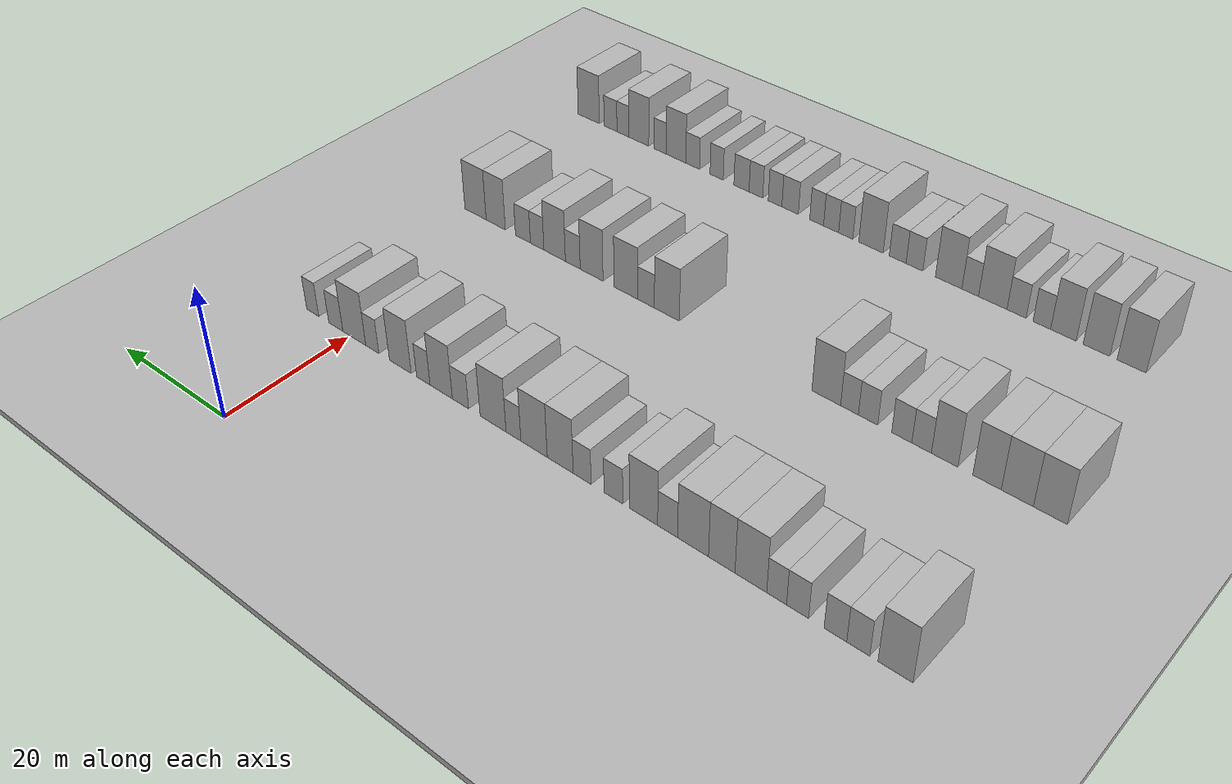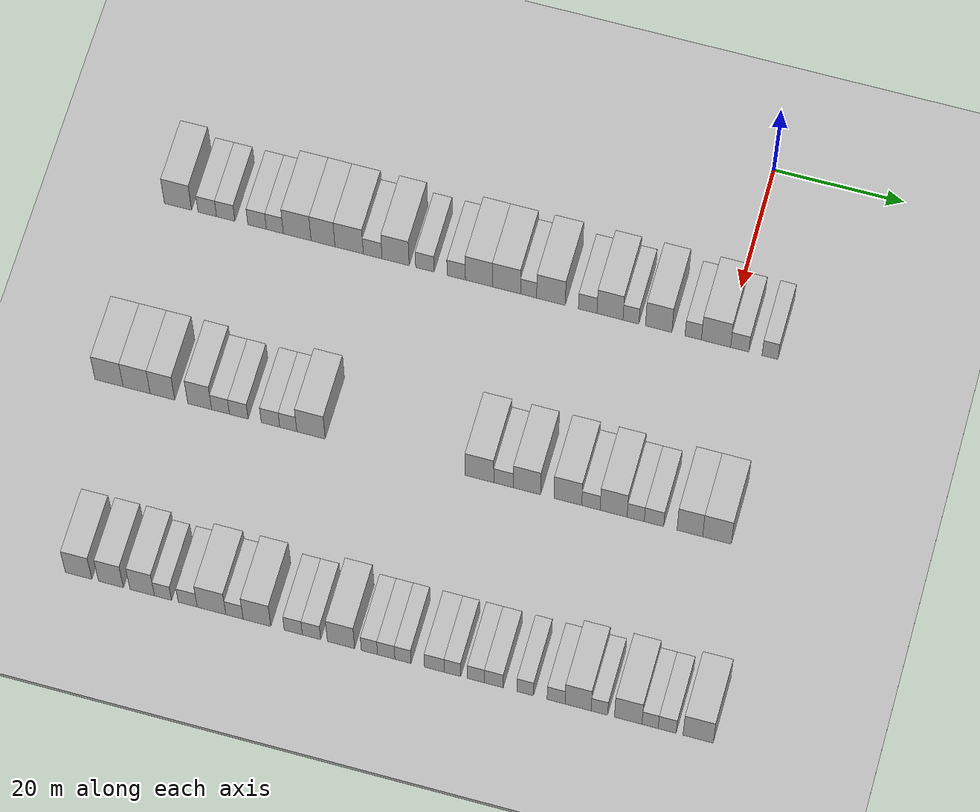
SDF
<sdf version="1.6">
 <world name="default">
  <include><name>ground_plane_1</name><uri>model://HANNAS_ground_plane</uri></include>
  <include>
   <name>ground_plane_2</name>
   <uri>model://HANNAS_ground_plane</uri>
   <pose>100 0 0  0 0 0</pose>
  </include>
  <model name="building_51">
   <static>1</static>
   <pose>25.0000 -84.2561 0 0.000000 0.000000 0.000000</pose>
   <link name="link">
    <pose>0 0 4.50 0 0 0</pose>
    <collision name="collision"><geometry><box><size>10.0000 4.2470 9.0000</size></box></geometry></collision>
    <visual name="visual">
     <cast_shadows>0</cast_shadows>
     <geometry><box><size>10.0000 4.2470 9.0000</size></box></geometry>
     <material>
      <script>
       <uri>model://HANNAS_wall/materials/scripts</uri>
       <uri>model://HANNAS_wall/materials/textures</uri>
       <name>vrc/HANNAS_wall</name>
      </script>
     </material>
    </visual>
   </link>
  </model>
  <model name="building_52">
   <static>1</static>
   <pose>25.0000 -79.6930 0 0.000000 0.000000 0.000000</pose>
   <link name="link">
    <pose>0 0 3.00 0 0 0</pose>
    <collision name="collision"><geometry><box><size>10.0000 2.8791 6.0000</size></box></geometry></collision>
    <visual name="visual">
     <cast_shadows>0</cast_shadows>
     <geometry><box><size>10.0000 2.8791 6.0000</size></box></geometry>
     <material>
      <script>
       <uri>model://HANNAS_wall/materials/scripts</uri>
       <uri>model://HANNAS_wall/materials/textures</uri>
       <name>vrc/HANNAS_wall</name>
      </script>
     </material>
    </visual>
   </link>
  </model>
  <model name="building_53">
   <static>1</static>
   <pose>25.0000 -76.8154 0 0.000000 0.000000 0.000000</pose>
   <link name="link">
    <pose>0 0 3.00 0 0 0</pose>
    <collision name="collision"><geometry><box><size>10.0000 2.8763 6.0000</size></box></geometry></collision>
    <visual name="visual">
     <cast_shadows>0</cast_shadows>
     <geometry><box><size>10.0000 2.8763 6.0000</size></box></geometry>
     <material>
      <script>
       <uri>model://HANNAS_wall/materials/scripts</uri>
       <uri>model://HANNAS_wall/materials/textures</uri>
       <name>vrc/HANNAS_wall</name>
      </script>
     </material>
    </visual>
   </link>
  </model>
  <model name="building_54">
   <static>1</static>
   <pose>25.0000 -71.9333 0 0.000000 0.000000 0.000000</pose>
   <link name="link">
    <pose>0 0 3.00 0 0 0</pose>
    <collision name="collision"><geometry><box><size>10.0000 2.8878 6.0000</size></box></geometry></collision>
    <visual name="visual">
     <cast_shadows>0</cast_shadows>
     <geometry><box><size>10.0000 2.8878 6.0000</size></box></geometry>
     <material>
      <script>
       <uri>model://HANNAS_wall/materials/scripts</uri>
       <uri>model://HANNAS_wall/materials/textures</uri>
       <name>vrc/HANNAS_wall</name>
      </script>
     </material>
    </visual>
   </link>
  </model>
  <model name="building_55">
   <static>1</static>
   <pose>25.0000 -69.1700 0 0.000000 0.000000 0.000000</pose>
   <link name="link">
    <pose>0 0 3.00 0 0 0</pose>
    <collision name="collision"><geometry><box><size>10.0000 2.6389 6.0000</size></box></geometry></collision>
    <visual name="visual">
     <cast_shadows>0</cast_shadows>
     <geometry><box><size>10.0000 2.6389 6.0000</size></box></geometry>
     <material>
      <script>
       <uri>model://HANNAS_wall/materials/scripts</uri>
       <uri>model://HANNAS_wall/materials/textures</uri>
       <name>vrc/HANNAS_wall</name>
      </script>
     </material>
    </visual>
   </link>
  </model>
  <model name="building_56">
   <static>1</static>
   <pose>25.0000 -65.6953 0 0.000000 0.000000 0.000000</pose>
   <link name="link">
    <pose>0 0 4.50 0 0 0</pose>
    <collision name="collision"><geometry><box><size>10.0000 4.3104 9.0000</size></box></geometry></collision>
    <visual name="visual">
     <cast_shadows>0</cast_shadows>
     <geometry><box><size>10.0000 4.3104 9.0000</size></box></geometry>
     <material>
      <script>
       <uri>model://HANNAS_wall/materials/scripts</uri>
       <uri>model://HANNAS_wall/materials/textures</uri>
       <name>vrc/HANNAS_wall</name>
      </script>
     </material>
    </visual>
   </link>
  </model>
  <model name="building_57">
   <static>1</static>
   <pose>25.0000 -61.6923 0 0.000000 0.000000 0.000000</pose>
   <link name="link">
    <pose>0 0 4.50 0 0 0</pose>
    <collision name="collision"><geometry><box><size>10.0000 3.6957 9.0000</size></box></geometry></collision>
    <visual name="visual">
     <cast_shadows>0</cast_shadows>
     <geometry><box><size>10.0000 3.6957 9.0000</size></box></geometry>
     <material>
      <script>
       <uri>model://HANNAS_wall/materials/scripts</uri>
       <uri>model://HANNAS_wall/materials/textures</uri>
       <name>vrc/HANNAS_wall</name>
      </script>
     </material>
    </visual>
   </link>
  </model>
  <model name="building_58">
   <static>1</static>
   <pose>25.0000 -57.6454 0 0.000000 0.000000 0.000000</pose>
   <link name="link">
    <pose>0 0 4.50 0 0 0</pose>
    <collision name="collision"><geometry><box><size>10.0000 4.3980 9.0000</size></box></geometry></collision>
    <visual name="visual">
     <cast_shadows>0</cast_shadows>
     <geometry><box><size>10.0000 4.3980 9.0000</size></box></geometry>
     <material>
      <script>
       <uri>model://HANNAS_wall/materials/scripts</uri>
       <uri>model://HANNAS_wall/materials/textures</uri>
       <name>vrc/HANNAS_wall</name>
      </script>
     </material>
    </visual>
   </link>
  </model>
  <model name="building_59">
   <static>1</static>
   <pose>25.0000 -53.9917 0 0.000000 0.000000 0.000000</pose>
   <link name="link">
    <pose>0 0 3.00 0 0 0</pose>
    <collision name="collision"><geometry><box><size>10.0000 2.9095 6.0000</size></box></geometry></collision>
    <visual name="visual">
     <cast_shadows>0</cast_shadows>
     <geometry><box><size>10.0000 2.9095 6.0000</size></box></geometry>
     <material>
      <script>
       <uri>model://HANNAS_wall/materials/scripts</uri>
       <uri>model://HANNAS_wall/materials/textures</uri>
       <name>vrc/HANNAS_wall</name>
      </script>
     </material>
    </visual>
   </link>
  </model>
  <model name="building_60">
   <static>1</static>
   <pose>25.0000 -50.4395 0 0.000000 0.000000 0.000000</pose>
   <link name="link">
    <pose>0 0 4.50 0 0 0</pose>
    <collision name="collision"><geometry><box><size>10.0000 4.1948 9.0000</size></box></geometry></collision>
    <visual name="visual">
     <cast_shadows>0</cast_shadows>
     <geometry><box><size>10.0000 4.1948 9.0000</size></box></geometry>
     <material>
      <script>
       <uri>model://HANNAS_wall/materials/scripts</uri>
       <uri>model://HANNAS_wall/materials/textures</uri>
       <name>vrc/HANNAS_wall</name>
      </script>
     </material>
    </visual>
   </link>
  </model>
  <model name="building_61">
   <static>1</static>
   <pose>25.0000 -45.9102 0 0.000000 0.000000 0.000000</pose>
   <link name="link">
    <pose>0 0 3.00 0 0 0</pose>
    <collision name="collision"><geometry><box><size>10.0000 2.8638 6.0000</size></box></geometry></collision>
    <visual name="visual">
     <cast_shadows>0</cast_shadows>
     <geometry><box><size>10.0000 2.8638 6.0000</size></box></geometry>
     <material>
      <script>
       <uri>model://HANNAS_wall/materials/scripts</uri>
       <uri>model://HANNAS_wall/materials/textures</uri>
       <name>vrc/HANNAS_wall</name>
      </script>
     </material>
    </visual>
   </link>
  </model>
  <model name="building_62">
   <static>1</static>
   <pose>25.0000 -41.0703 0 0.000000 0.000000 0.000000</pose>
   <link name="link">
    <pose>0 0 3.00 0 0 0</pose>
    <collision name="collision"><geometry><box><size>10.0000 2.8161 6.0000</size></box></geometry></collision>
    <visual name="visual">
     <cast_shadows>0</cast_shadows>
     <geometry><box><size>10.0000 2.8161 6.0000</size></box></geometry>
     <material>
      <script>
       <uri>model://HANNAS_wall/materials/scripts</uri>
       <uri>model://HANNAS_wall/materials/textures</uri>
       <name>vrc/HANNAS_wall</name>
      </script>
     </material>
    </visual>
   </link>
  </model>
  <model name="building_63">
   <static>1</static>
   <pose>25.0000 -37.5849 0 0.000000 0.000000 0.000000</pose>
   <link name="link">
    <pose>0 0 4.50 0 0 0</pose>
    <collision name="collision"><geometry><box><size>10.0000 4.1545 9.0000</size></box></geometry></collision>
    <visual name="visual">
     <cast_shadows>0</cast_shadows>
     <geometry><box><size>10.0000 4.1545 9.0000</size></box></geometry>
     <material>
      <script>
       <uri>model://HANNAS_wall/materials/scripts</uri>
       <uri>model://HANNAS_wall/materials/textures</uri>
       <name>vrc/HANNAS_wall</name>
      </script>
     </material>
    </visual>
   </link>
  </model>
  <model name="building_64">
   <static>1</static>
   <pose>25.0000 -33.3486 0 0.000000 0.000000 0.000000</pose>
   <link name="link">
    <pose>0 0 4.50 0 0 0</pose>
    <collision name="collision"><geometry><box><size>10.0000 4.3183 9.0000</size></box></geometry></collision>
    <visual name="visual">
     <cast_shadows>0</cast_shadows>
     <geometry><box><size>10.0000 4.3183 9.0000</size></box></geometry>
     <material>
      <script>
       <uri>model://HANNAS_wall/materials/scripts</uri>
       <uri>model://HANNAS_wall/materials/textures</uri>
       <name>vrc/HANNAS_wall</name>
      </script>
     </material>
    </visual>
   </link>
  </model>
  <model name="building_65">
   <static>1</static>
   <pose>25.0000 -29.9497 0 0.000000 0.000000 0.000000</pose>
   <link name="link">
    <pose>0 0 3.00 0 0 0</pose>
    <collision name="collision"><geometry><box><size>10.0000 2.4795 6.0000</size></box></geometry></collision>
    <visual name="visual">
     <cast_shadows>0</cast_shadows>
     <geometry><box><size>10.0000 2.4795 6.0000</size></box></geometry>
     <material>
      <script>
       <uri>model://HANNAS_wall/materials/scripts</uri>
       <uri>model://HANNAS_wall/materials/textures</uri>
       <name>vrc/HANNAS_wall</name>
      </script>
     </material>
    </visual>
   </link>
  </model>
  <model name="building_66">
   <static>1</static>
   <pose>25.0000 -26.5078 0 0.000000 0.000000 0.000000</pose>
   <link name="link">
    <pose>0 0 4.50 0 0 0</pose>
    <collision name="collision"><geometry><box><size>10.0000 4.4043 9.0000</size></box></geometry></collision>
    <visual name="visual">
     <cast_shadows>0</cast_shadows>
     <geometry><box><size>10.0000 4.4043 9.0000</size></box></geometry>
     <material>
      <script>
       <uri>model://HANNAS_wall/materials/scripts</uri>
       <uri>model://HANNAS_wall/materials/textures</uri>
       <name>vrc/HANNAS_wall</name>
      </script>
     </material>
    </visual>
   </link>
  </model>
  <model name="building_67">
   <static>1</static>
   <pose>25.0000 -20.8807 0 0.000000 0.000000 0.000000</pose>
   <link name="link">
    <pose>0 0 3.00 0 0 0</pose>
    <collision name="collision"><geometry><box><size>10.0000 2.8499 6.0000</size></box></geometry></collision>
    <visual name="visual">
     <cast_shadows>0</cast_shadows>
     <geometry><box><size>10.0000 2.8499 6.0000</size></box></geometry>
     <material>
      <script>
       <uri>model://HANNAS_wall/materials/scripts</uri>
       <uri>model://HANNAS_wall/materials/textures</uri>
       <name>vrc/HANNAS_wall</name>
      </script>
     </material>
    </visual>
   </link>
  </model>
  <model name="building_68">
   <static>1</static>
   <pose>25.0000 -17.4631 0 0.000000 0.000000 0.000000</pose>
   <link name="link">
    <pose>0 0 4.50 0 0 0</pose>
    <collision name="collision"><geometry><box><size>10.0000 3.9854 9.0000</size></box></geometry></collision>
    <visual name="visual">
     <cast_shadows>0</cast_shadows>
     <geometry><box><size>10.0000 3.9854 9.0000</size></box></geometry>
     <material>
      <script>
       <uri>model://HANNAS_wall/materials/scripts</uri>
       <uri>model://HANNAS_wall/materials/textures</uri>
       <name>vrc/HANNAS_wall</name>
      </script>
     </material>
    </visual>
   </link>
  </model>
  <model name="building_69">
   <static>1</static>
   <pose>25.0000 -14.2533 0 0.000000 0.000000 0.000000</pose>
   <link name="link">
    <pose>0 0 3.00 0 0 0</pose>
    <collision name="collision"><geometry><box><size>10.0000 2.4342 6.0000</size></box></geometry></collision>
    <visual name="visual">
     <cast_shadows>0</cast_shadows>
     <geometry><box><size>10.0000 2.4342 6.0000</size></box></geometry>
     <material>
      <script>
       <uri>model://HANNAS_wall/materials/scripts</uri>
       <uri>model://HANNAS_wall/materials/textures</uri>
       <name>vrc/HANNAS_wall</name>
      </script>
     </material>
    </visual>
   </link>
  </model>
  <model name="building_70">
   <static>1</static>
   <pose>25.0000 -10.0174 0 0.000000 0.000000 0.000000</pose>
   <link name="link">
    <pose>0 0 4.50 0 0 0</pose>
    <collision name="collision"><geometry><box><size>10.0000 4.0376 9.0000</size></box></geometry></collision>
    <visual name="visual">
     <cast_shadows>0</cast_shadows>
     <geometry><box><size>10.0000 4.0376 9.0000</size></box></geometry>
     <material>
      <script>
       <uri>model://HANNAS_wall/materials/scripts</uri>
       <uri>model://HANNAS_wall/materials/textures</uri>
       <name>vrc/HANNAS_wall</name>
      </script>
     </material>
    </visual>
   </link>
  </model>
  <model name="building_71">
   <static>1</static>
   <pose>25.0000 -4.7479 0 0.000000 0.000000 0.000000</pose>
   <link name="link">
    <pose>0 0 3.00 0 0 0</pose>
    <collision name="collision"><geometry><box><size>10.0000 2.5015 6.0000</size></box></geometry></collision>
    <visual name="visual">
     <cast_shadows>0</cast_shadows>
     <geometry><box><size>10.0000 2.5015 6.0000</size></box></geometry>
     <material>
      <script>
       <uri>model://HANNAS_wall/materials/scripts</uri>
       <uri>model://HANNAS_wall/materials/textures</uri>
       <name>vrc/HANNAS_wall</name>
      </script>
     </material>
    </visual>
   </link>
  </model>
  <model name="building_72">
   <static>1</static>
   <pose>25.0000 -1.2713 0 0.000000 0.000000 0.000000</pose>
   <link name="link">
    <pose>0 0 4.50 0 0 0</pose>
    <collision name="collision"><geometry><box><size>10.0000 4.4517 9.0000</size></box></geometry></collision>
    <visual name="visual">
     <cast_shadows>0</cast_shadows>
     <geometry><box><size>10.0000 4.4517 9.0000</size></box></geometry>
     <material>
      <script>
       <uri>model://HANNAS_wall/materials/scripts</uri>
       <uri>model://HANNAS_wall/materials/textures</uri>
       <name>vrc/HANNAS_wall</name>
      </script>
     </material>
    </visual>
   </link>
  </model>
  <model name="building_73">
   <static>1</static>
   <pose>25.0000 2.3411 0 0.000000 0.000000 0.000000</pose>
   <link name="link">
    <pose>0 0 3.00 0 0 0</pose>
    <collision name="collision"><geometry><box><size>10.0000 2.7731 6.0000</size></box></geometry></collision>
    <visual name="visual">
     <cast_shadows>0</cast_shadows>
     <geometry><box><size>10.0000 2.7731 6.0000</size></box></geometry>
     <material>
      <script>
       <uri>model://HANNAS_wall/materials/scripts</uri>
       <uri>model://HANNAS_wall/materials/textures</uri>
       <name>vrc/HANNAS_wall</name>
      </script>
     </material>
    </visual>
   </link>
  </model>
  <model name="building_74">
   <static>1</static>
   <pose>25.0000 6.9408 0 0.000000 0.000000 0.000000</pose>
   <link name="link">
    <pose>0 0 3.00 0 0 0</pose>
    <collision name="collision"><geometry><box><size>10.0000 2.4263 6.0000</size></box></geometry></collision>
    <visual name="visual">
     <cast_shadows>0</cast_shadows>
     <geometry><box><size>10.0000 2.4263 6.0000</size></box></geometry>
     <material>
      <script>
       <uri>model://HANNAS_wall/materials/scripts</uri>
       <uri>model://HANNAS_wall/materials/textures</uri>
       <name>vrc/HANNAS_wall</name>
      </script>
     </material>
    </visual>
   </link>
  </model>
  <model name="building_189">
   <static>1</static>
   <pose>55.0000 -85.6263 0 0.000000 0.000000 0.000000</pose>
   <link name="link">
    <pose>0 0 4.50 0 0 0</pose>
    <collision name="collision"><geometry><box><size>10.0000 4.3120 9.0000</size></box></geometry></collision>
    <visual name="visual">
     <cast_shadows>0</cast_shadows>
     <geometry><box><size>10.0000 4.3120 9.0000</size></box></geometry>
     <material>
      <script>
       <uri>model://HANNAS_wall/materials/scripts</uri>
       <uri>model://HANNAS_wall/materials/textures</uri>
       <name>vrc/HANNAS_wall</name>
      </script>
     </material>
    </visual>
   </link>
  </model>
  <model name="building_190">
   <static>1</static>
   <pose>55.0000 -81.3864 0 0.000000 0.000000 0.000000</pose>
   <link name="link">
    <pose>0 0 4.50 0 0 0</pose>
    <collision name="collision"><geometry><box><size>10.0000 4.1679 9.0000</size></box></geometry></collision>
    <visual name="visual">
     <cast_shadows>0</cast_shadows>
     <geometry><box><size>10.0000 4.1679 9.0000</size></box></geometry>
     <material>
      <script>
       <uri>model://HANNAS_wall/materials/scripts</uri>
       <uri>model://HANNAS_wall/materials/textures</uri>
       <name>vrc/HANNAS_wall</name>
      </script>
     </material>
    </visual>
   </link>
  </model>
  <model name="building_191">
   <static>1</static>
   <pose>55.0000 -77.4113 0 0.000000 0.000000 0.000000</pose>
   <link name="link">
    <pose>0 0 4.50 0 0 0</pose>
    <collision name="collision"><geometry><box><size>10.0000 3.7824 9.0000</size></box></geometry></collision>
    <visual name="visual">
     <cast_shadows>0</cast_shadows>
     <geometry><box><size>10.0000 3.7824 9.0000</size></box></geometry>
     <material>
      <script>
       <uri>model://HANNAS_wall/materials/scripts</uri>
       <uri>model://HANNAS_wall/materials/textures</uri>
       <name>vrc/HANNAS_wall</name>
      </script>
     </material>
    </visual>
   </link>
  </model>
  <model name="building_192">
   <static>1</static>
   <pose>55.0000 -71.6938 0 0.000000 0.000000 0.000000</pose>
   <link name="link">
    <pose>0 0 4.50 0 0 0</pose>
    <collision name="collision"><geometry><box><size>10.0000 3.6525 9.0000</size></box></geometry></collision>
    <visual name="visual">
     <cast_shadows>0</cast_shadows>
     <geometry><box><size>10.0000 3.6525 9.0000</size></box></geometry>
     <material>
      <script>
       <uri>model://HANNAS_wall/materials/scripts</uri>
       <uri>model://HANNAS_wall/materials/textures</uri>
       <name>vrc/HANNAS_wall</name>
      </script>
     </material>
    </visual>
   </link>
  </model>
  <model name="building_193">
   <static>1</static>
   <pose>55.0000 -68.5025 0 0.000000 0.000000 0.000000</pose>
   <link name="link">
    <pose>0 0 3.00 0 0 0</pose>
    <collision name="collision"><geometry><box><size>10.0000 2.7300 6.0000</size></box></geometry></collision>
    <visual name="visual">
     <cast_shadows>0</cast_shadows>
     <geometry><box><size>10.0000 2.7300 6.0000</size></box></geometry>
     <material>
      <script>
       <uri>model://HANNAS_wall/materials/scripts</uri>
       <uri>model://HANNAS_wall/materials/textures</uri>
       <name>vrc/HANNAS_wall</name>
      </script>
     </material>
    </visual>
   </link>
  </model>
  <model name="building_194">
   <static>1</static>
   <pose>55.0000 -65.7098 0 0.000000 0.000000 0.000000</pose>
   <link name="link">
    <pose>0 0 3.00 0 0 0</pose>
    <collision name="collision"><geometry><box><size>10.0000 2.8554 6.0000</size></box></geometry></collision>
    <visual name="visual">
     <cast_shadows>0</cast_shadows>
     <geometry><box><size>10.0000 2.8554 6.0000</size></box></geometry>
     <material>
      <script>
       <uri>model://HANNAS_wall/materials/scripts</uri>
       <uri>model://HANNAS_wall/materials/textures</uri>
       <name>vrc/HANNAS_wall</name>
      </script>
     </material>
    </visual>
   </link>
  </model>
  <model name="building_195">
   <static>1</static>
   <pose>55.0000 -60.8707 0 0.000000 0.000000 0.000000</pose>
   <link name="link">
    <pose>0 0 3.00 0 0 0</pose>
    <collision name="collision"><geometry><box><size>10.0000 2.8229 6.0000</size></box></geometry></collision>
    <visual name="visual">
     <cast_shadows>0</cast_shadows>
     <geometry><box><size>10.0000 2.8229 6.0000</size></box></geometry>
     <material>
      <script>
       <uri>model://HANNAS_wall/materials/scripts</uri>
       <uri>model://HANNAS_wall/materials/textures</uri>
       <name>vrc/HANNAS_wall</name>
      </script>
     </material>
    </visual>
   </link>
  </model>
  <model name="building_196">
   <static>1</static>
   <pose>55.0000 -58.1522 0 0.000000 0.000000 0.000000</pose>
   <link name="link">
    <pose>0 0 3.00 0 0 0</pose>
    <collision name="collision"><geometry><box><size>10.0000 2.6142 6.0000</size></box></geometry></collision>
    <visual name="visual">
     <cast_shadows>0</cast_shadows>
     <geometry><box><size>10.0000 2.6142 6.0000</size></box></geometry>
     <material>
      <script>
       <uri>model://HANNAS_wall/materials/scripts</uri>
       <uri>model://HANNAS_wall/materials/textures</uri>
       <name>vrc/HANNAS_wall</name>
      </script>
     </material>
    </visual>
   </link>
  </model>
  <model name="building_197">
   <static>1</static>
   <pose>55.0000 -54.6822 0 0.000000 0.000000 0.000000</pose>
   <link name="link">
    <pose>0 0 4.50 0 0 0</pose>
    <collision name="collision"><geometry><box><size>10.0000 4.3257 9.0000</size></box></geometry></collision>
    <visual name="visual">
     <cast_shadows>0</cast_shadows>
     <geometry><box><size>10.0000 4.3257 9.0000</size></box></geometry>
     <material>
      <script>
       <uri>model://HANNAS_wall/materials/scripts</uri>
       <uri>model://HANNAS_wall/materials/textures</uri>
       <name>vrc/HANNAS_wall</name>
      </script>
     </material>
    </visual>
   </link>
  </model>
  <model name="building_198">
   <static>1</static>
   <pose>55.0000 -29.0769 0 0.000000 0.000000 0.000000</pose>
   <link name="link">
    <pose>0 0 4.50 0 0 0</pose>
    <collision name="collision"><geometry><box><size>10.0000 4.2949 9.0000</size></box></geometry></collision>
    <visual name="visual">
     <cast_shadows>0</cast_shadows>
     <geometry><box><size>10.0000 4.2949 9.0000</size></box></geometry>
     <material>
      <script>
       <uri>model://HANNAS_wall/materials/scripts</uri>
       <uri>model://HANNAS_wall/materials/textures</uri>
       <name>vrc/HANNAS_wall</name>
      </script>
     </material>
    </visual>
   </link>
  </model>
  <model name="building_199">
   <static>1</static>
   <pose>55.0000 -25.4536 0 0.000000 0.000000 0.000000</pose>
   <link name="link">
    <pose>0 0 3.00 0 0 0</pose>
    <collision name="collision"><geometry><box><size>10.0000 2.9518 6.0000</size></box></geometry></collision>
    <visual name="visual">
     <cast_shadows>0</cast_shadows>
     <geometry><box><size>10.0000 2.9518 6.0000</size></box></geometry>
     <material>
      <script>
       <uri>model://HANNAS_wall/materials/scripts</uri>
       <uri>model://HANNAS_wall/materials/textures</uri>
       <name>vrc/HANNAS_wall</name>
      </script>
     </material>
    </visual>
   </link>
  </model>
  <model name="building_200">
   <static>1</static>
   <pose>55.0000 -21.9079 0 0.000000 0.000000 0.000000</pose>
   <link name="link">
    <pose>0 0 4.50 0 0 0</pose>
    <collision name="collision"><geometry><box><size>10.0000 4.1396 9.0000</size></box></geometry></collision>
    <visual name="visual">
     <cast_shadows>0</cast_shadows>
     <geometry><box><size>10.0000 4.1396 9.0000</size></box></geometry>
     <material>
      <script>
       <uri>model://HANNAS_wall/materials/scripts</uri>
       <uri>model://HANNAS_wall/materials/textures</uri>
       <name>vrc/HANNAS_wall</name>
      </script>
     </material>
    </visual>
   </link>
  </model>
  <model name="building_201">
   <static>1</static>
   <pose>55.0000 -15.7457 0 0.000000 0.000000 0.000000</pose>
   <link name="link">
    <pose>0 0 4.50 0 0 0</pose>
    <collision name="collision"><geometry><box><size>10.0000 4.1848 9.0000</size></box></geometry></collision>
    <visual name="visual">
     <cast_shadows>0</cast_shadows>
     <geometry><box><size>10.0000 4.1848 9.0000</size></box></geometry>
     <material>
      <script>
       <uri>model://HANNAS_wall/materials/scripts</uri>
       <uri>model://HANNAS_wall/materials/textures</uri>
       <name>vrc/HANNAS_wall</name>
      </script>
     </material>
    </visual>
   </link>
  </model>
  <model name="building_202">
   <static>1</static>
   <pose>55.0000 -12.2777 0 0.000000 0.000000 0.000000</pose>
   <link name="link">
    <pose>0 0 3.00 0 0 0</pose>
    <collision name="collision"><geometry><box><size>10.0000 2.7510 6.0000</size></box></geometry></collision>
    <visual name="visual">
     <cast_shadows>0</cast_shadows>
     <geometry><box><size>10.0000 2.7510 6.0000</size></box></geometry>
     <material>
      <script>
       <uri>model://HANNAS_wall/materials/scripts</uri>
       <uri>model://HANNAS_wall/materials/textures</uri>
       <name>vrc/HANNAS_wall</name>
      </script>
     </material>
    </visual>
   </link>
  </model>
  <model name="building_203">
   <static>1</static>
   <pose>55.0000 -8.8659 0 0.000000 0.000000 0.000000</pose>
   <link name="link">
    <pose>0 0 4.50 0 0 0</pose>
    <collision name="collision"><geometry><box><size>10.0000 4.0726 9.0000</size></box></geometry></collision>
    <visual name="visual">
     <cast_shadows>0</cast_shadows>
     <geometry><box><size>10.0000 4.0726 9.0000</size></box></geometry>
     <material>
      <script>
       <uri>model://HANNAS_wall/materials/scripts</uri>
       <uri>model://HANNAS_wall/materials/textures</uri>
       <name>vrc/HANNAS_wall</name>
      </script>
     </material>
    </visual>
   </link>
  </model>
  <model name="building_204">
   <static>1</static>
   <pose>55.0000 -5.5384 0 0.000000 0.000000 0.000000</pose>
   <link name="link">
    <pose>0 0 3.00 0 0 0</pose>
    <collision name="collision"><geometry><box><size>10.0000 2.5823 6.0000</size></box></geometry></collision>
    <visual name="visual">
     <cast_shadows>0</cast_shadows>
     <geometry><box><size>10.0000 2.5823 6.0000</size></box></geometry>
     <material>
      <script>
       <uri>model://HANNAS_wall/materials/scripts</uri>
       <uri>model://HANNAS_wall/materials/textures</uri>
       <name>vrc/HANNAS_wall</name>
      </script>
     </material>
    </visual>
   </link>
  </model>
  <model name="building_205">
   <static>1</static>
   <pose>55.0000 -2.7918 0 0.000000 0.000000 0.000000</pose>
   <link name="link">
    <pose>0 0 3.00 0 0 0</pose>
    <collision name="collision"><geometry><box><size>10.0000 2.9110 6.0000</size></box></geometry></collision>
    <visual name="visual">
     <cast_shadows>0</cast_shadows>
     <geometry><box><size>10.0000 2.9110 6.0000</size></box></geometry>
     <material>
      <script>
       <uri>model://HANNAS_wall/materials/scripts</uri>
       <uri>model://HANNAS_wall/materials/textures</uri>
       <name>vrc/HANNAS_wall</name>
      </script>
     </material>
    </visual>
   </link>
  </model>
  <model name="building_206">
   <static>1</static>
   <pose>55.0000 2.5796 0 0.000000 0.000000 0.000000</pose>
   <link name="link">
    <pose>0 0 4.50 0 0 0</pose>
    <collision name="collision"><geometry><box><size>10.0000 3.8318 9.0000</size></box></geometry></collision>
    <visual name="visual">
     <cast_shadows>0</cast_shadows>
     <geometry><box><size>10.0000 3.8318 9.0000</size></box></geometry>
     <material>
      <script>
       <uri>model://HANNAS_wall/materials/scripts</uri>
       <uri>model://HANNAS_wall/materials/textures</uri>
       <name>vrc/HANNAS_wall</name>
      </script>
     </material>
    </visual>
   </link>
  </model>
  <model name="building_207">
   <static>1</static>
   <pose>55.0000 6.6438 0 0.000000 0.000000 0.000000</pose>
   <link name="link">
    <pose>0 0 4.50 0 0 0</pose>
    <collision name="collision"><geometry><box><size>10.0000 4.2966 9.0000</size></box></geometry></collision>
    <visual name="visual">
     <cast_shadows>0</cast_shadows>
     <geometry><box><size>10.0000 4.2966 9.0000</size></box></geometry>
     <material>
      <script>
       <uri>model://HANNAS_wall/materials/scripts</uri>
       <uri>model://HANNAS_wall/materials/textures</uri>
       <name>vrc/HANNAS_wall</name>
      </script>
     </material>
    </visual>
   </link>
  </model>
  <model name="building_324">
   <static>1</static>
   <pose>85.0000 -80.7926 0 0.000000 0.000000 0.000000</pose>
   <link name="link">
    <pose>0 0 4.50 0 0 0</pose>
    <collision name="collision"><geometry><box><size>10.0000 4.0101 9.0000</size></box></geometry></collision>
    <visual name="visual">
     <cast_shadows>0</cast_shadows>
     <geometry><box><size>10.0000 4.0101 9.0000</size></box></geometry>
     <material>
      <script>
       <uri>model://HANNAS_wall/materials/scripts</uri>
       <uri>model://HANNAS_wall/materials/textures</uri>
       <name>vrc/HANNAS_wall</name>
      </script>
     </material>
    </visual>
   </link>
  </model>
  <model name="building_325">
   <static>1</static>
   <pose>85.0000 -75.9050 0 0.000000 0.000000 0.000000</pose>
   <link name="link">
    <pose>0 0 4.50 0 0 0</pose>
    <collision name="collision"><geometry><box><size>10.0000 3.7651 9.0000</size></box></geometry></collision>
    <visual name="visual">
     <cast_shadows>0</cast_shadows>
     <geometry><box><size>10.0000 3.7651 9.0000</size></box></geometry>
     <material>
      <script>
       <uri>model://HANNAS_wall/materials/scripts</uri>
       <uri>model://HANNAS_wall/materials/textures</uri>
       <name>vrc/HANNAS_wall</name>
      </script>
     </material>
    </visual>
   </link>
  </model>
  <model name="building_326">
   <static>1</static>
   <pose>85.0000 -71.1795 0 0.000000 0.000000 0.000000</pose>
   <link name="link">
    <pose>0 0 4.50 0 0 0</pose>
    <collision name="collision"><geometry><box><size>10.0000 3.6858 9.0000</size></box></geometry></collision>
    <visual name="visual">
     <cast_shadows>0</cast_shadows>
     <geometry><box><size>10.0000 3.6858 9.0000</size></box></geometry>
     <material>
      <script>
       <uri>model://HANNAS_wall/materials/scripts</uri>
       <uri>model://HANNAS_wall/materials/textures</uri>
       <name>vrc/HANNAS_wall</name>
      </script>
     </material>
    </visual>
   </link>
  </model>
  <model name="building_327">
   <static>1</static>
   <pose>85.0000 -68.0445 0 0.000000 0.000000 0.000000</pose>
   <link name="link">
    <pose>0 0 3.00 0 0 0</pose>
    <collision name="collision"><geometry><box><size>10.0000 2.5842 6.0000</size></box></geometry></collision>
    <visual name="visual">
     <cast_shadows>0</cast_shadows>
     <geometry><box><size>10.0000 2.5842 6.0000</size></box></geometry>
     <material>
      <script>
       <uri>model://HANNAS_wall/materials/scripts</uri>
       <uri>model://HANNAS_wall/materials/textures</uri>
       <name>vrc/HANNAS_wall</name>
      </script>
     </material>
    </visual>
   </link>
  </model>
  <model name="building_328">
   <static>1</static>
   <pose>85.0000 -64.3209 0 0.000000 0.000000 0.000000</pose>
   <link name="link">
    <pose>0 0 3.00 0 0 0</pose>
    <collision name="collision"><geometry><box><size>10.0000 2.8630 6.0000</size></box></geometry></collision>
    <visual name="visual">
     <cast_shadows>0</cast_shadows>
     <geometry><box><size>10.0000 2.8630 6.0000</size></box></geometry>
     <material>
      <script>
       <uri>model://HANNAS_wall/materials/scripts</uri>
       <uri>model://HANNAS_wall/materials/textures</uri>
       <name>vrc/HANNAS_wall</name>
      </script>
     </material>
    </visual>
   </link>
  </model>
  <model name="building_329">
   <static>1</static>
   <pose>85.0000 -60.7284 0 0.000000 0.000000 0.000000</pose>
   <link name="link">
    <pose>0 0 4.50 0 0 0</pose>
    <collision name="collision"><geometry><box><size>10.0000 4.3221 9.0000</size></box></geometry></collision>
    <visual name="visual">
     <cast_shadows>0</cast_shadows>
     <geometry><box><size>10.0000 4.3221 9.0000</size></box></geometry>
     <material>
      <script>
       <uri>model://HANNAS_wall/materials/scripts</uri>
       <uri>model://HANNAS_wall/materials/textures</uri>
       <name>vrc/HANNAS_wall</name>
      </script>
     </material>
    </visual>
   </link>
  </model>
  <model name="building_330">
   <static>1</static>
   <pose>85.0000 -57.2764 0 0.000000 0.000000 0.000000</pose>
   <link name="link">
    <pose>0 0 3.00 0 0 0</pose>
    <collision name="collision"><geometry><box><size>10.0000 2.5819 6.0000</size></box></geometry></collision>
    <visual name="visual">
     <cast_shadows>0</cast_shadows>
     <geometry><box><size>10.0000 2.5819 6.0000</size></box></geometry>
     <material>
      <script>
       <uri>model://HANNAS_wall/materials/scripts</uri>
       <uri>model://HANNAS_wall/materials/textures</uri>
       <name>vrc/HANNAS_wall</name>
      </script>
     </material>
    </visual>
   </link>
  </model>
  <model name="building_331">
   <static>1</static>
   <pose>85.0000 -53.9031 0 0.000000 0.000000 0.000000</pose>
   <link name="link">
    <pose>0 0 4.50 0 0 0</pose>
    <collision name="collision"><geometry><box><size>10.0000 4.1647 9.0000</size></box></geometry></collision>
    <visual name="visual">
     <cast_shadows>0</cast_shadows>
     <geometry><box><size>10.0000 4.1647 9.0000</size></box></geometry>
     <material>
      <script>
       <uri>model://HANNAS_wall/materials/scripts</uri>
       <uri>model://HANNAS_wall/materials/textures</uri>
       <name>vrc/HANNAS_wall</name>
      </script>
     </material>
    </visual>
   </link>
  </model>
  <model name="building_332">
   <static>1</static>
   <pose>85.0000 -48.4594 0 0.000000 0.000000 0.000000</pose>
   <link name="link">
    <pose>0 0 3.00 0 0 0</pose>
    <collision name="collision"><geometry><box><size>10.0000 2.7228 6.0000</size></box></geometry></collision>
    <visual name="visual">
     <cast_shadows>0</cast_shadows>
     <geometry><box><size>10.0000 2.7228 6.0000</size></box></geometry>
     <material>
      <script>
       <uri>model://HANNAS_wall/materials/scripts</uri>
       <uri>model://HANNAS_wall/materials/textures</uri>
       <name>vrc/HANNAS_wall</name>
      </script>
     </material>
    </visual>
   </link>
  </model>
  <model name="building_333">
   <static>1</static>
   <pose>85.0000 -45.7276 0 0.000000 0.000000 0.000000</pose>
   <link name="link">
    <pose>0 0 3.00 0 0 0</pose>
    <collision name="collision"><geometry><box><size>10.0000 2.7409 6.0000</size></box></geometry></collision>
    <visual name="visual">
     <cast_shadows>0</cast_shadows>
     <geometry><box><size>10.0000 2.7409 6.0000</size></box></geometry>
     <material>
      <script>
       <uri>model://HANNAS_wall/materials/scripts</uri>
       <uri>model://HANNAS_wall/materials/textures</uri>
       <name>vrc/HANNAS_wall</name>
      </script>
     </material>
    </visual>
   </link>
  </model>
  <model name="building_334">
   <static>1</static>
   <pose>85.0000 -41.3190 0 0.000000 0.000000 0.000000</pose>
   <link name="link">
    <pose>0 0 4.50 0 0 0</pose>
    <collision name="collision"><geometry><box><size>10.0000 4.0763 9.0000</size></box></geometry></collision>
    <visual name="visual">
     <cast_shadows>0</cast_shadows>
     <geometry><box><size>10.0000 4.0763 9.0000</size></box></geometry>
     <material>
      <script>
       <uri>model://HANNAS_wall/materials/scripts</uri>
       <uri>model://HANNAS_wall/materials/textures</uri>
       <name>vrc/HANNAS_wall</name>
      </script>
     </material>
    </visual>
   </link>
  </model>
  <model name="building_335">
   <static>1</static>
   <pose>85.0000 -37.0662 0 0.000000 0.000000 0.000000</pose>
   <link name="link">
    <pose>0 0 3.00 0 0 0</pose>
    <collision name="collision"><geometry><box><size>10.0000 2.4292 6.0000</size></box></geometry></collision>
    <visual name="visual">
     <cast_shadows>0</cast_shadows>
     <geometry><box><size>10.0000 2.4292 6.0000</size></box></geometry>
     <material>
      <script>
       <uri>model://HANNAS_wall/materials/scripts</uri>
       <uri>model://HANNAS_wall/materials/textures</uri>
       <name>vrc/HANNAS_wall</name>
      </script>
     </material>
    </visual>
   </link>
  </model>
  <model name="building_336">
   <static>1</static>
   <pose>85.0000 -34.5582 0 0.000000 0.000000 0.000000</pose>
   <link name="link">
    <pose>0 0 3.00 0 0 0</pose>
    <collision name="collision"><geometry><box><size>10.0000 2.5867 6.0000</size></box></geometry></collision>
    <visual name="visual">
     <cast_shadows>0</cast_shadows>
     <geometry><box><size>10.0000 2.5867 6.0000</size></box></geometry>
     <material>
      <script>
       <uri>model://HANNAS_wall/materials/scripts</uri>
       <uri>model://HANNAS_wall/materials/textures</uri>
       <name>vrc/HANNAS_wall</name>
      </script>
     </material>
    </visual>
   </link>
  </model>
  <model name="building_337">
   <static>1</static>
   <pose>85.0000 -32.0552 0 0.000000 0.000000 0.000000</pose>
   <link name="link">
    <pose>0 0 3.00 0 0 0</pose>
    <collision name="collision"><geometry><box><size>10.0000 2.4192 6.0000</size></box></geometry></collision>
    <visual name="visual">
     <cast_shadows>0</cast_shadows>
     <geometry><box><size>10.0000 2.4192 6.0000</size></box></geometry>
     <material>
      <script>
       <uri>model://HANNAS_wall/materials/scripts</uri>
       <uri>model://HANNAS_wall/materials/textures</uri>
       <name>vrc/HANNAS_wall</name>
      </script>
     </material>
    </visual>
   </link>
  </model>
  <model name="building_338">
   <static>1</static>
   <pose>85.0000 -27.3766 0 0.000000 0.000000 0.000000</pose>
   <link name="link">
    <pose>0 0 3.00 0 0 0</pose>
    <collision name="collision"><geometry><box><size>10.0000 2.9380 6.0000</size></box></geometry></collision>
    <visual name="visual">
     <cast_shadows>0</cast_shadows>
     <geometry><box><size>10.0000 2.9380 6.0000</size></box></geometry>
     <material>
      <script>
       <uri>model://HANNAS_wall/materials/scripts</uri>
       <uri>model://HANNAS_wall/materials/textures</uri>
       <name>vrc/HANNAS_wall</name>
      </script>
     </material>
    </visual>
   </link>
  </model>
  <model name="building_339">
   <static>1</static>
   <pose>85.0000 -24.6774 0 0.000000 0.000000 0.000000</pose>
   <link name="link">
    <pose>0 0 3.00 0 0 0</pose>
    <collision name="collision"><geometry><box><size>10.0000 2.4604 6.0000</size></box></geometry></collision>
    <visual name="visual">
     <cast_shadows>0</cast_shadows>
     <geometry><box><size>10.0000 2.4604 6.0000</size></box></geometry>
     <material>
      <script>
       <uri>model://HANNAS_wall/materials/scripts</uri>
       <uri>model://HANNAS_wall/materials/textures</uri>
       <name>vrc/HANNAS_wall</name>
      </script>
     </material>
    </visual>
   </link>
  </model>
  <model name="building_340">
   <static>1</static>
   <pose>85.0000 -21.1944 0 0.000000 0.000000 0.000000</pose>
   <link name="link">
    <pose>0 0 3.00 0 0 0</pose>
    <collision name="collision"><geometry><box><size>10.0000 2.5056 6.0000</size></box></geometry></collision>
    <visual name="visual">
     <cast_shadows>0</cast_shadows>
     <geometry><box><size>10.0000 2.5056 6.0000</size></box></geometry>
     <material>
      <script>
       <uri>model://HANNAS_wall/materials/scripts</uri>
       <uri>model://HANNAS_wall/materials/textures</uri>
       <name>vrc/HANNAS_wall</name>
      </script>
     </material>
    </visual>
   </link>
  </model>
  <model name="building_341">
   <static>1</static>
   <pose>85.0000 -18.5379 0 0.000000 0.000000 0.000000</pose>
   <link name="link">
    <pose>0 0 3.00 0 0 0</pose>
    <collision name="collision"><geometry><box><size>10.0000 2.8076 6.0000</size></box></geometry></collision>
    <visual name="visual">
     <cast_shadows>0</cast_shadows>
     <geometry><box><size>10.0000 2.8076 6.0000</size></box></geometry>
     <material>
      <script>
       <uri>model://HANNAS_wall/materials/scripts</uri>
       <uri>model://HANNAS_wall/materials/textures</uri>
       <name>vrc/HANNAS_wall</name>
      </script>
     </material>
    </visual>
   </link>
  </model>
  <model name="building_342">
   <static>1</static>
   <pose>85.0000 -13.8874 0 0.000000 0.000000 0.000000</pose>
   <link name="link">
    <pose>0 0 3.00 0 0 0</pose>
    <collision name="collision"><geometry><box><size>10.0000 2.4934 6.0000</size></box></geometry></collision>
    <visual name="visual">
     <cast_shadows>0</cast_shadows>
     <geometry><box><size>10.0000 2.4934 6.0000</size></box></geometry>
     <material>
      <script>
       <uri>model://HANNAS_wall/materials/scripts</uri>
       <uri>model://HANNAS_wall/materials/textures</uri>
       <name>vrc/HANNAS_wall</name>
      </script>
     </material>
    </visual>
   </link>
  </model>
  <model name="building_343">
   <static>1</static>
   <pose>85.0000 -9.3130 0 0.000000 0.000000 0.000000</pose>
   <link name="link">
    <pose>0 0 3.00 0 0 0</pose>
    <collision name="collision"><geometry><box><size>10.0000 2.6554 6.0000</size></box></geometry></collision>
    <visual name="visual">
     <cast_shadows>0</cast_shadows>
     <geometry><box><size>10.0000 2.6554 6.0000</size></box></geometry>
     <material>
      <script>
       <uri>model://HANNAS_wall/materials/scripts</uri>
       <uri>model://HANNAS_wall/materials/textures</uri>
       <name>vrc/HANNAS_wall</name>
      </script>
     </material>
    </visual>
   </link>
  </model>
  <model name="building_344">
   <static>1</static>
   <pose>85.0000 -6.0554 0 0.000000 0.000000 0.000000</pose>
   <link name="link">
    <pose>0 0 4.50 0 0 0</pose>
    <collision name="collision"><geometry><box><size>10.0000 3.8598 9.0000</size></box></geometry></collision>
    <visual name="visual">
     <cast_shadows>0</cast_shadows>
     <geometry><box><size>10.0000 3.8598 9.0000</size></box></geometry>
     <material>
      <script>
       <uri>model://HANNAS_wall/materials/scripts</uri>
       <uri>model://HANNAS_wall/materials/textures</uri>
       <name>vrc/HANNAS_wall</name>
      </script>
     </material>
    </visual>
   </link>
  </model>
  <model name="building_345">
   <static>1</static>
   <pose>85.0000 -2.9054 0 0.000000 0.000000 0.000000</pose>
   <link name="link">
    <pose>0 0 3.00 0 0 0</pose>
    <collision name="collision"><geometry><box><size>10.0000 2.4402 6.0000</size></box></geometry></collision>
    <visual name="visual">
     <cast_shadows>0</cast_shadows>
     <geometry><box><size>10.0000 2.4402 6.0000</size></box></geometry>
     <material>
      <script>
       <uri>model://HANNAS_wall/materials/scripts</uri>
       <uri>model://HANNAS_wall/materials/textures</uri>
       <name>vrc/HANNAS_wall</name>
      </script>
     </material>
    </visual>
   </link>
  </model>
  <model name="building_346">
   <static>1</static>
   <pose>85.0000 1.3385 0 0.000000 0.000000 0.000000</pose>
   <link name="link">
    <pose>0 0 4.50 0 0 0</pose>
    <collision name="collision"><geometry><box><size>10.0000 4.0476 9.0000</size></box></geometry></collision>
    <visual name="visual">
     <cast_shadows>0</cast_shadows>
     <geometry><box><size>10.0000 4.0476 9.0000</size></box></geometry>
     <material>
      <script>
       <uri>model://HANNAS_wall/materials/scripts</uri>
       <uri>model://HANNAS_wall/materials/textures</uri>
       <name>vrc/HANNAS_wall</name>
      </script>
     </material>
    </visual>
   </link>
  </model>
  <model name="building_347">
   <static>1</static>
   <pose>85.0000 4.5632 0 0.000000 0.000000 0.000000</pose>
   <link name="link">
    <pose>0 0 3.00 0 0 0</pose>
    <collision name="collision"><geometry><box><size>10.0000 2.4017 6.0000</size></box></geometry></collision>
    <visual name="visual">
     <cast_shadows>0</cast_shadows>
     <geometry><box><size>10.0000 2.4017 6.0000</size></box></geometry>
     <material>
      <script>
       <uri>model://HANNAS_wall/materials/scripts</uri>
       <uri>model://HANNAS_wall/materials/textures</uri>
       <name>vrc/HANNAS_wall</name>
      </script>
     </material>
    </visual>
   </link>
  </model>
  <model name="building_348">
   <static>1</static>
   <pose>85.0000 7.0923 0 0.000000 0.000000 0.000000</pose>
   <link name="link">
    <pose>0 0 3.00 0 0 0</pose>
    <collision name="collision"><geometry><box><size>10.0000 2.6565 6.0000</size></box></geometry></collision>
    <visual name="visual">
     <cast_shadows>0</cast_shadows>
     <geometry><box><size>10.0000 2.6565 6.0000</size></box></geometry>
     <material>
      <script>
       <uri>model://HANNAS_wall/materials/scripts</uri>
       <uri>model://HANNAS_wall/materials/textures</uri>
       <name>vrc/HANNAS_wall</name>
      </script>
     </material>
    </visual>
   </link>
  </model>
  <model name="building_349">
   <static>1</static>
   <pose>85.0000 11.6468 0 0.000000 0.000000 0.000000</pose>
   <link name="link">
    <pose>0 0 4.50 0 0 0</pose>
    <collision name="collision"><geometry><box><size>10.0000 4.4525 9.0000</size></box></geometry></collision>
    <visual name="visual">
     <cast_shadows>0</cast_shadows>
     <geometry><box><size>10.0000 4.4525 9.0000</size></box></geometry>
     <material>
      <script>
       <uri>model://HANNAS_wall/materials/scripts</uri>
       <uri>model://HANNAS_wall/materials/textures</uri>
       <name>vrc/HANNAS_wall</name>
      </script>
     </material>
    </visual>
   </link>
  </model>
 </world>
</sdf>
